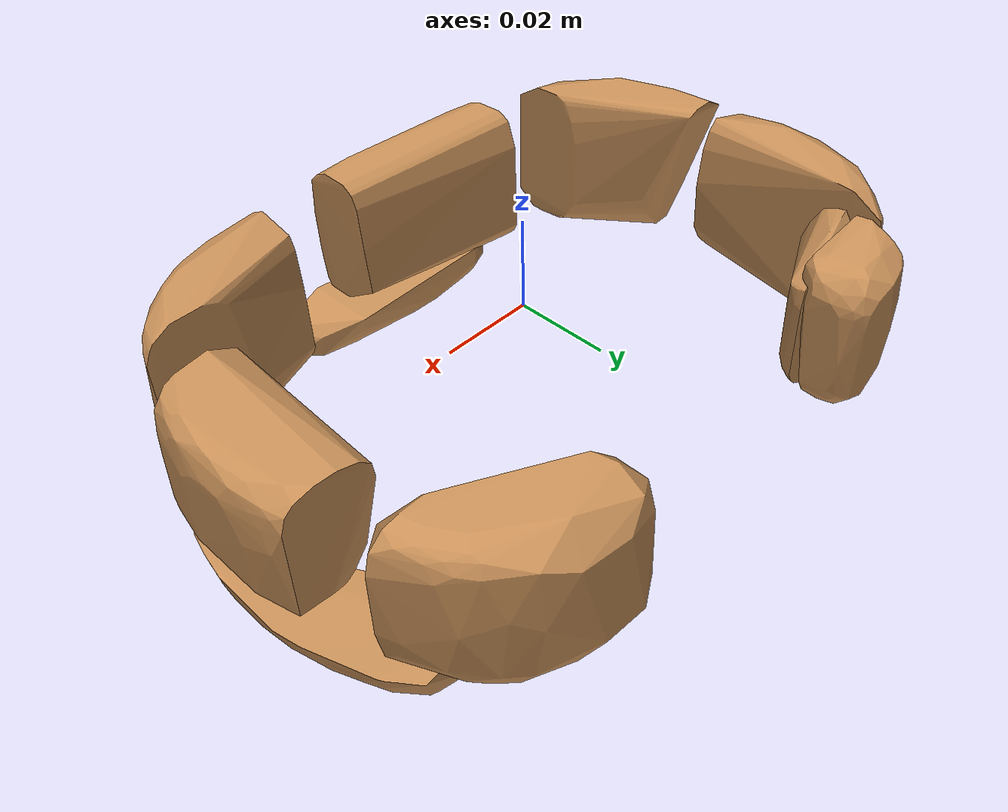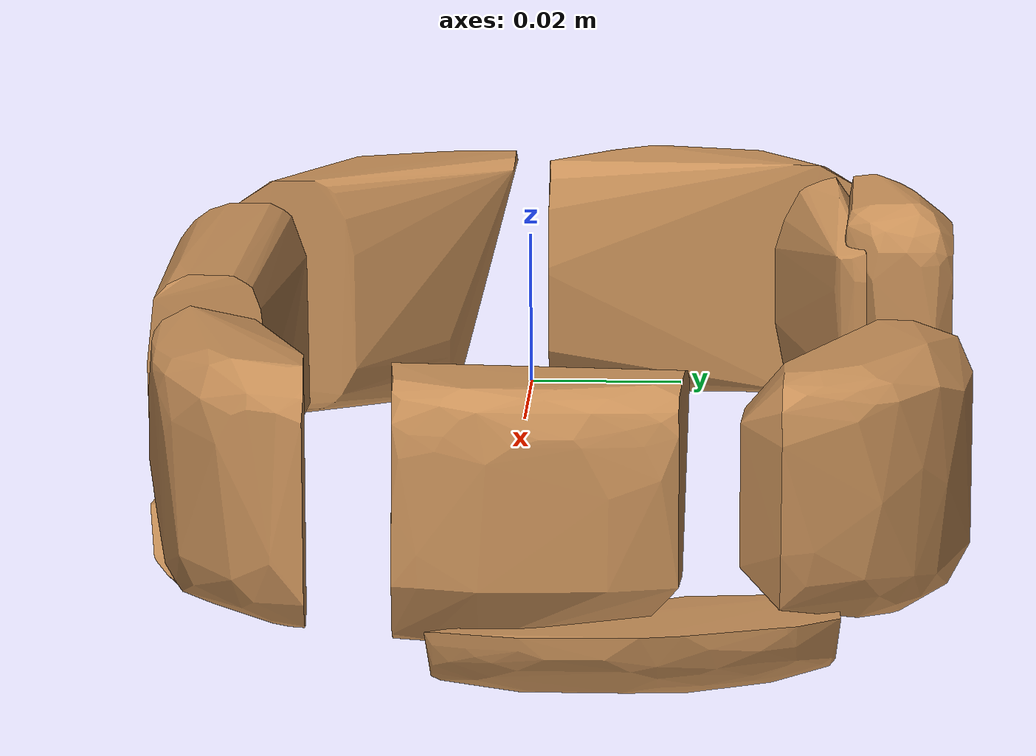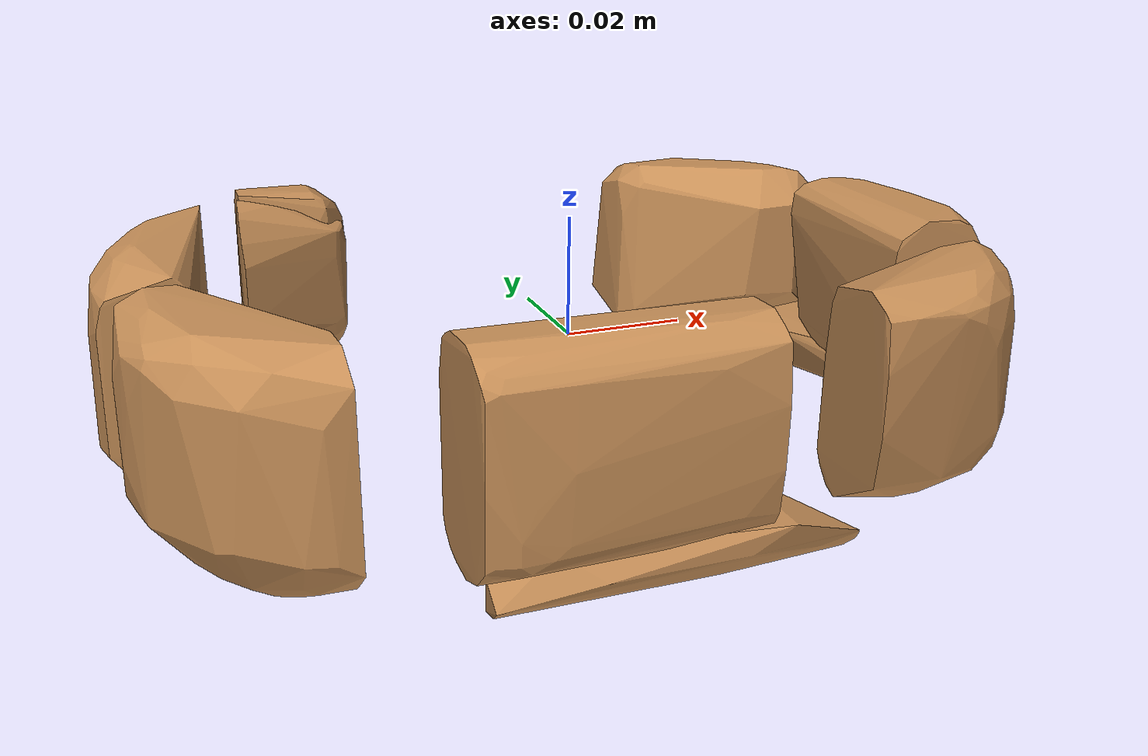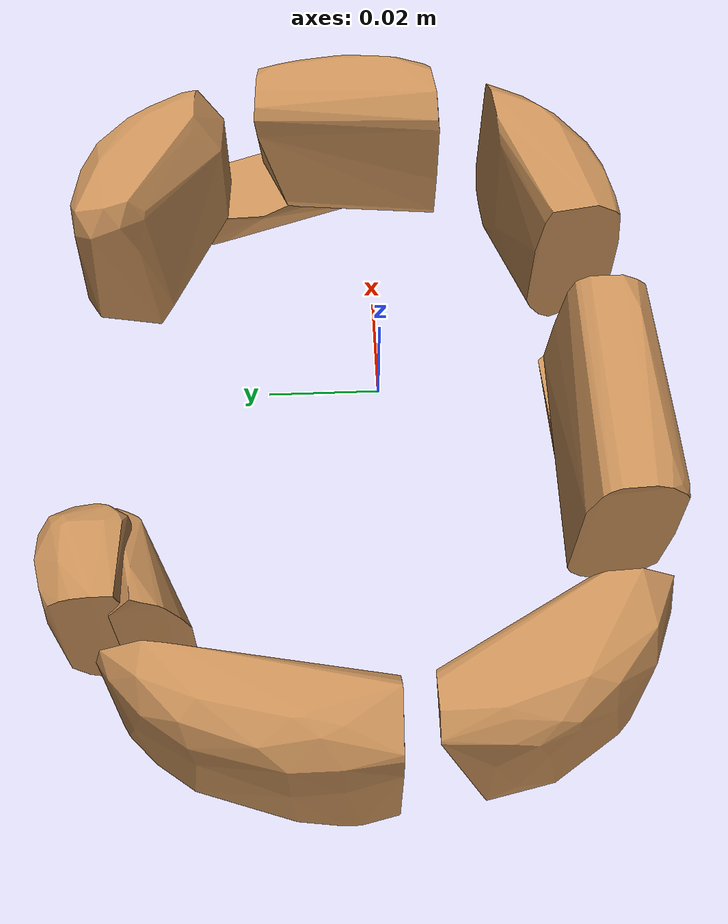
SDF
<?xml version='1.0' encoding='UTF-8'?>
<!-- This SDF was autogenerated by obj_to_drake_sdf.py -->
<sdf version="1.7">
  <model name="C_shape_texture">
    <link name="C_shape_texture">
      <inertial>
        <pose>0 0 0 0 0 0</pose>
        <mass>0.05</mass>
        <inertia>
          <ixx>7.5171432e-05</ixx>
          <iyy>0.00014291713</iyy>
          <izz>0.00020129405</izz>
          <ixy>-3.9771422e-06</ixy>
          <ixz>6.9713696e-08</ixz>
          <iyz>-6.9171532e-07</iyz>
        </inertia>
      </inertial>
      <visual name="convex_0">
        <pose>0 0 0 0 0 0</pose>
        <geometry>
          <mesh>
            <uri>C_shape_texture_convex_0.obj</uri>
          </mesh>
        </geometry>
        <material>
          <diffuse>0.7843137254901961 0.5647058823529412 0.34509803921568627 1</diffuse>
        </material>
      </visual>
      <collision name="convex_0_volume">
        <pose>0 0 0 0 0 0</pose>
        <geometry>
          <mesh>
            <uri>C_shape_texture_convex_0.obj</uri>
          </mesh>
        </geometry>
        <drake:proximity_properties xmlns:drake="uri:drake">
          <drake:compliant_hydroelastic/>
          <drake:hydroelastic_modulus> 3.0e7 </drake:hydroelastic_modulus>
          <drake:mesh_resolution_hint> 0.02 </drake:mesh_resolution_hint>
          <drake:hunt_crossley_dissipation>10</drake:hunt_crossley_dissipation>
          <drake:mu_dynamic>0.3</drake:mu_dynamic>
        </drake:proximity_properties>
      </collision>
      <visual name="convex_1">
        <pose>0 0 0 0 0 0</pose>
        <geometry>
          <mesh>
            <uri>C_shape_texture_convex_1.obj</uri>
          </mesh>
        </geometry>
        <material>
          <diffuse>0.7843137254901961 0.5647058823529412 0.34509803921568627 1</diffuse>
        </material>
      </visual>
      <collision name="convex_1_volume">
        <pose>0 0 0 0 0 0</pose>
        <geometry>
          <mesh>
            <uri>C_shape_texture_convex_1.obj</uri>
          </mesh>
        </geometry>
        <drake:proximity_properties xmlns:drake="uri:drake">
          <drake:compliant_hydroelastic/>
          <drake:hydroelastic_modulus> 3.0e7 </drake:hydroelastic_modulus>
          <drake:mesh_resolution_hint> 0.02 </drake:mesh_resolution_hint>
          <drake:hunt_crossley_dissipation>10</drake:hunt_crossley_dissipation>
          <drake:mu_dynamic>0.3</drake:mu_dynamic>
        </drake:proximity_properties>
      </collision>
      <visual name="convex_2">
        <pose>0 0 0 0 0 0</pose>
        <geometry>
          <mesh>
            <uri>C_shape_texture_convex_2.obj</uri>
          </mesh>
        </geometry>
        <material>
          <diffuse>0.7843137254901961 0.5647058823529412 0.34509803921568627 1</diffuse>
        </material>
      </visual>
      <collision name="convex_2_volume">
        <pose>0 0 0 0 0 0</pose>
        <geometry>
          <mesh>
            <uri>C_shape_texture_convex_2.obj</uri>
          </mesh>
        </geometry>
        <drake:proximity_properties xmlns:drake="uri:drake">
          <drake:compliant_hydroelastic/>
          <drake:hydroelastic_modulus> 3.0e7 </drake:hydroelastic_modulus>
          <drake:mesh_resolution_hint> 0.02 </drake:mesh_resolution_hint>
          <drake:hunt_crossley_dissipation>10</drake:hunt_crossley_dissipation>
          <drake:mu_dynamic>0.3</drake:mu_dynamic>
        </drake:proximity_properties>
      </collision>
      <visual name="convex_3">
        <pose>0 0 0 0 0 0</pose>
        <geometry>
          <mesh>
            <uri>C_shape_texture_convex_3.obj</uri>
          </mesh>
        </geometry>
        <material>
          <diffuse>0.7843137254901961 0.5647058823529412 0.34509803921568627 1</diffuse>
        </material>
      </visual>
      <collision name="convex_3_volume">
        <pose>0 0 0 0 0 0</pose>
        <geometry>
          <mesh>
            <uri>C_shape_texture_convex_3.obj</uri>
          </mesh>
        </geometry>
        <drake:proximity_properties xmlns:drake="uri:drake">
          <drake:compliant_hydroelastic/>
          <drake:hydroelastic_modulus> 3.0e7 </drake:hydroelastic_modulus>
          <drake:mesh_resolution_hint> 0.02 </drake:mesh_resolution_hint>
          <drake:hunt_crossley_dissipation>10</drake:hunt_crossley_dissipation>
          <drake:mu_dynamic>0.3</drake:mu_dynamic>
        </drake:proximity_properties>
      </collision>
      <visual name="convex_4">
        <pose>0 0 0 0 0 0</pose>
        <geometry>
          <mesh>
            <uri>C_shape_texture_convex_4.obj</uri>
          </mesh>
        </geometry>
        <material>
          <diffuse>0.7843137254901961 0.5647058823529412 0.34509803921568627 1</diffuse>
        </material>
      </visual>
      <collision name="convex_4_volume">
        <pose>0 0 0 0 0 0</pose>
        <geometry>
          <mesh>
            <uri>C_shape_texture_convex_4.obj</uri>
          </mesh>
        </geometry>
        <drake:proximity_properties xmlns:drake="uri:drake">
          <drake:compliant_hydroelastic/>
          <drake:hydroelastic_modulus> 3.0e7 </drake:hydroelastic_modulus>
          <drake:mesh_resolution_hint> 0.02 </drake:mesh_resolution_hint>
          <drake:hunt_crossley_dissipation>10</drake:hunt_crossley_dissipation>
          <drake:mu_dynamic>0.3</drake:mu_dynamic>
        </drake:proximity_properties>
      </collision>
      <visual name="convex_5">
        <pose>0 0 0 0 0 0</pose>
        <geometry>
          <mesh>
            <uri>C_shape_texture_convex_5.obj</uri>
          </mesh>
        </geometry>
        <material>
          <diffuse>0.7843137254901961 0.5647058823529412 0.34509803921568627 1</diffuse>
        </material>
      </visual>
      <collision name="convex_5_volume">
        <pose>0 0 0 0 0 0</pose>
        <geometry>
          <mesh>
            <uri>C_shape_texture_convex_5.obj</uri>
          </mesh>
        </geometry>
        <drake:proximity_properties xmlns:drake="uri:drake">
          <drake:compliant_hydroelastic/>
          <drake:hydroelastic_modulus> 3.0e7 </drake:hydroelastic_modulus>
          <drake:mesh_resolution_hint> 0.02 </drake:mesh_resolution_hint>
          <drake:hunt_crossley_dissipation>10</drake:hunt_crossley_dissipation>
          <drake:mu_dynamic>0.3</drake:mu_dynamic>
        </drake:proximity_properties>
      </collision>
      <visual name="convex_6">
        <pose>0 0 0 0 0 0</pose>
        <geometry>
          <mesh>
            <uri>C_shape_texture_convex_6.obj</uri>
          </mesh>
        </geometry>
        <material>
          <diffuse>0.7843137254901961 0.5647058823529412 0.34509803921568627 1</diffuse>
        </material>
      </visual>
      <collision name="convex_6_volume">
        <pose>0 0 0 0 0 0</pose>
        <geometry>
          <mesh>
            <uri>C_shape_texture_convex_6.obj</uri>
          </mesh>
        </geometry>
        <drake:proximity_properties xmlns:drake="uri:drake">
          <drake:compliant_hydroelastic/>
          <drake:hydroelastic_modulus> 3.0e7 </drake:hydroelastic_modulus>
          <drake:mesh_resolution_hint> 0.02 </drake:mesh_resolution_hint>
          <drake:hunt_crossley_dissipation>10</drake:hunt_crossley_dissipation>
          <drake:mu_dynamic>0.3</drake:mu_dynamic>
        </drake:proximity_properties>
      </collision>
      <visual name="convex_7">
        <pose>0 0 0 0 0 0</pose>
        <geometry>
          <mesh>
            <uri>C_shape_texture_convex_7.obj</uri>
          </mesh>
        </geometry>
        <material>
          <diffuse>0.7843137254901961 0.5647058823529412 0.34509803921568627 1</diffuse>
        </material>
      </visual>
      <collision name="convex_7_volume">
        <pose>0 0 0 0 0 0</pose>
        <geometry>
          <mesh>
            <uri>C_shape_texture_convex_7.obj</uri>
          </mesh>
        </geometry>
        <drake:proximity_properties xmlns:drake="uri:drake">
          <drake:compliant_hydroelastic/>
          <drake:hydroelastic_modulus> 3.0e7 </drake:hydroelastic_modulus>
          <drake:mesh_resolution_hint> 0.02 </drake:mesh_resolution_hint>
          <drake:hunt_crossley_dissipation>10</drake:hunt_crossley_dissipation>
          <drake:mu_dynamic>0.3</drake:mu_dynamic>
        </drake:proximity_properties>
      </collision>
      <visual name="convex_8">
        <pose>0 0 0 0 0 0</pose>
        <geometry>
          <mesh>
            <uri>C_shape_texture_convex_8.obj</uri>
          </mesh>
        </geometry>
        <material>
          <diffuse>0.7843137254901961 0.5647058823529412 0.34509803921568627 1</diffuse>
        </material>
      </visual>
      <collision name="convex_8_volume">
        <pose>0 0 0 0 0 0</pose>
        <geometry>
          <mesh>
            <uri>C_shape_texture_convex_8.obj</uri>
          </mesh>
        </geometry>
        <drake:proximity_properties xmlns:drake="uri:drake">
          <drake:compliant_hydroelastic/>
          <drake:hydroelastic_modulus> 3.0e7 </drake:hydroelastic_modulus>
          <drake:mesh_resolution_hint> 0.02 </drake:mesh_resolution_hint>
          <drake:hunt_crossley_dissipation>10</drake:hunt_crossley_dissipation>
          <drake:mu_dynamic>0.3</drake:mu_dynamic>
        </drake:proximity_properties>
      </collision>
      <visual name="convex_9">
        <pose>0 0 0 0 0 0</pose>
        <geometry>
          <mesh>
            <uri>C_shape_texture_convex_9.obj</uri>
          </mesh>
        </geometry>
        <material>
          <diffuse>0.7843137254901961 0.5647058823529412 0.34509803921568627 1</diffuse>
        </material>
      </visual>
      <collision name="convex_9_volume">
        <pose>0 0 0 0 0 0</pose>
        <geometry>
          <mesh>
            <uri>C_shape_texture_convex_9.obj</uri>
          </mesh>
        </geometry>
        <drake:proximity_properties xmlns:drake="uri:drake">
          <drake:compliant_hydroelastic/>
          <drake:hydroelastic_modulus> 3.0e7 </drake:hydroelastic_modulus>
          <drake:mesh_resolution_hint> 0.02 </drake:mesh_resolution_hint>
          <drake:hunt_crossley_dissipation>10</drake:hunt_crossley_dissipation>
          <drake:mu_dynamic>0.3</drake:mu_dynamic>
        </drake:proximity_properties>
      </collision>
    </link>
  </model>
</sdf>
